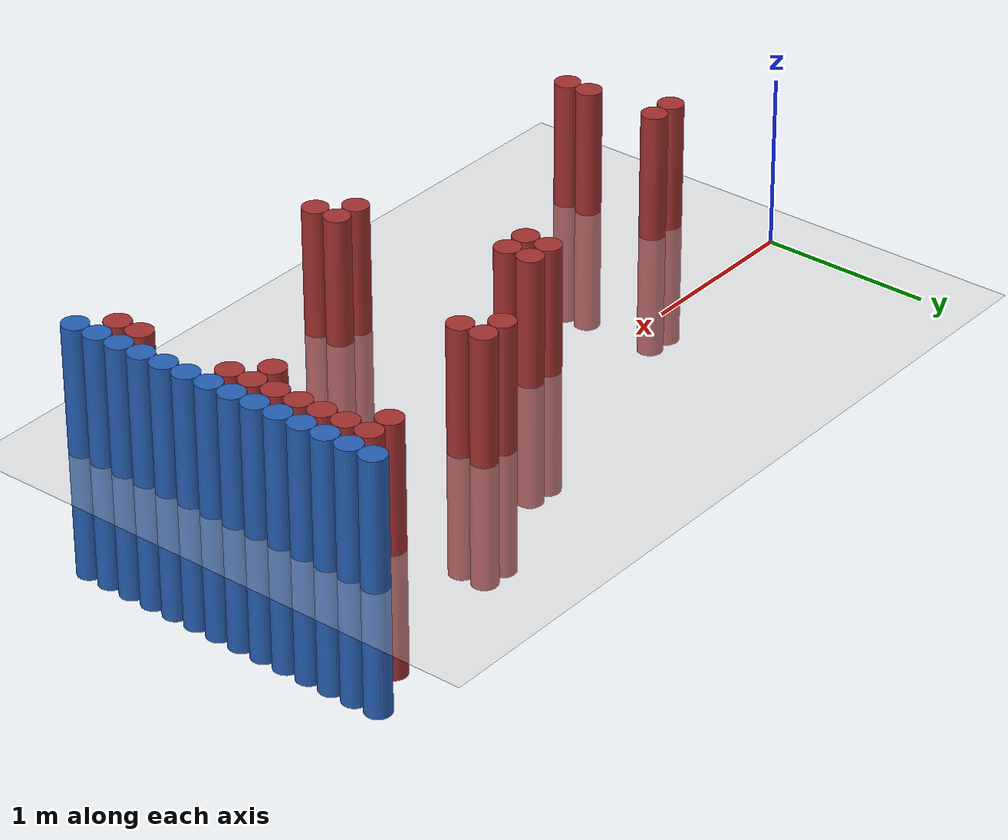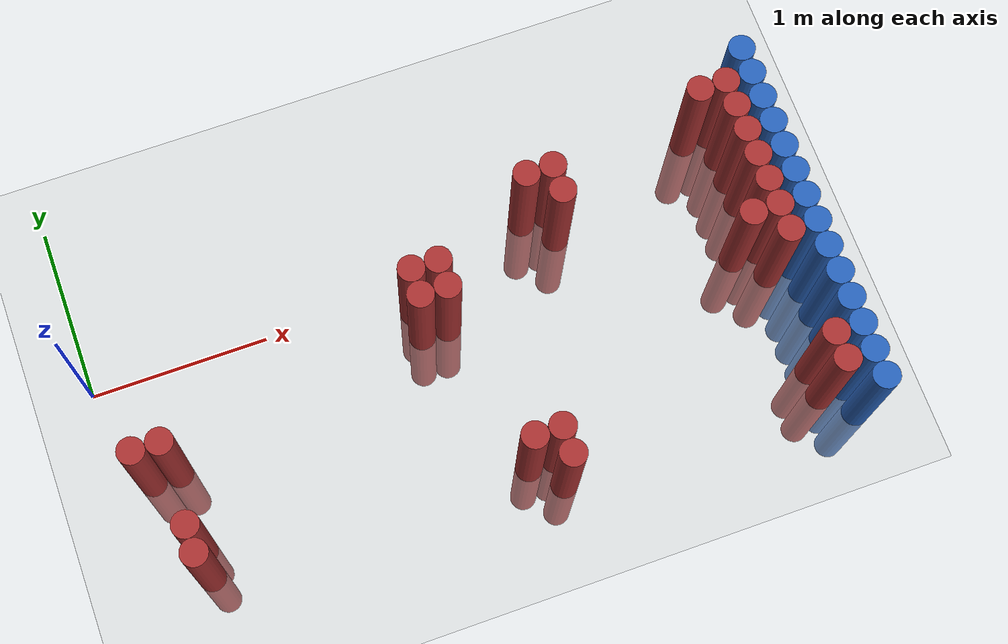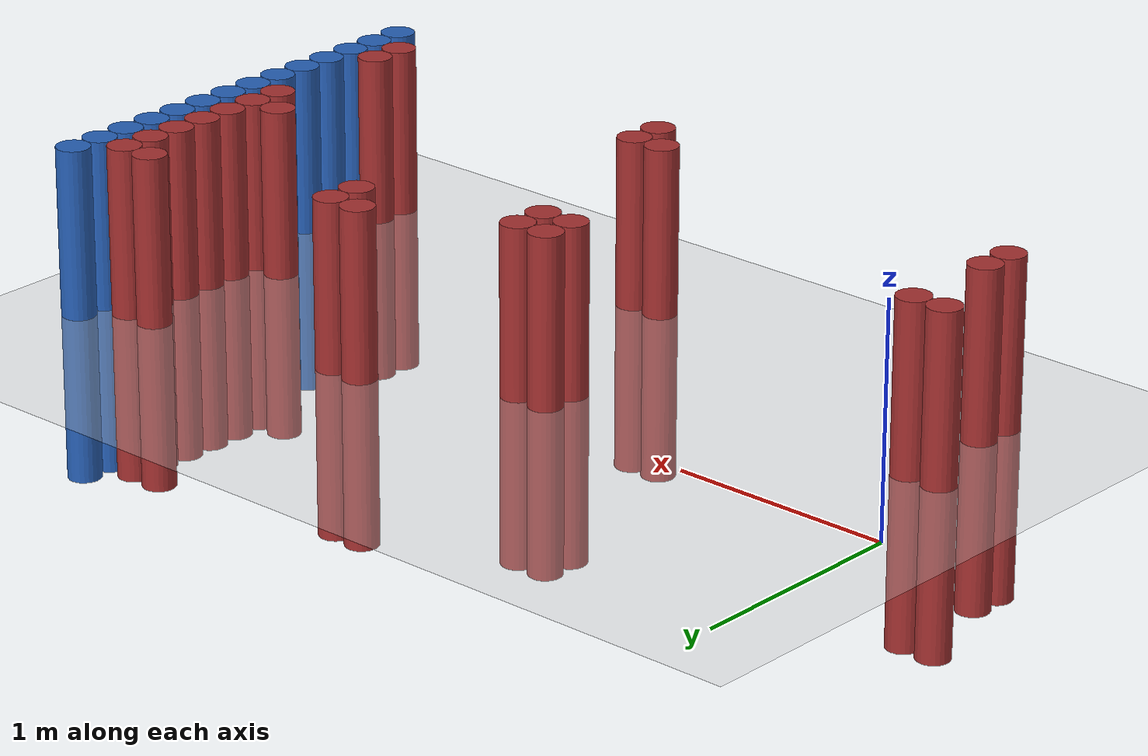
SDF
<sdf version="1.6">
 <world name="default">
  <model name="ground_plane">
   <static>1</static>
   <link name="link">
    <collision name="collision">
     <geometry><plane><normal>0 0 1</normal><size>100 100</size></plane></geometry>
     <surface><friction><ode><mu>100</mu><mu2>50</mu2></ode></friction></surface>
    </collision>
    <visual name="visual">
     <cast_shadows>0</cast_shadows>
     <geometry><plane><normal>0 0 1</normal><size>100 100</size></plane></geometry>
     <material>
      <script><uri>file://media/materials/scripts/gazebo.material</uri><name>Gazebo/Grey</name></script>
     </material>
    </visual>
   </link>
  </model>
  <model name="unit_cylinder_96">
   <static>1</static>
   <pose>3.925000 -1.325000 0.000000 0.000000 0.000000 0.000000</pose>
   <link name="link">
    <inertial>
     <mass>1</mass>
     <inertia><ixx>0.145833</ixx><ixy>0</ixy><ixz>0</ixz><iyy>0.145833</iyy><iyz>0</iyz><izz>0.125</izz></inertia>
    </inertial>
    <collision name="collision">
     <geometry><cylinder><radius>0.075000</radius><length>1.5</length></cylinder></geometry>
    </collision>
    <visual name="visual">
     <geometry><cylinder><radius>0.075000</radius><length>1.5</length></cylinder></geometry>
     <material>
      <ambient>0.152000 0.379000 0.720000 1</ambient>
      <diffuse>0.152000 0.379000 0.720000 1</diffuse>
     </material>
     <material>
      <script><name>Gazebo/Grey</name><uri>file://media/materials/scripts/gazebo.material</uri></script>
     </material>
    </visual>
   </link>
  </model>
  <model name="unit_cylinder_98">
   <static>1</static>
   <pose>3.925000 -1.175000 0.000000 0.000000 0.000000 0.000000</pose>
   <link name="link">
    <inertial>
     <mass>1</mass>
     <inertia><ixx>0.145833</ixx><ixy>0</ixy><ixz>0</ixz><iyy>0.145833</iyy><iyz>0</iyz><izz>0.125</izz></inertia>
    </inertial>
    <collision name="collision">
     <geometry><cylinder><radius>0.075000</radius><length>1.5</length></cylinder></geometry>
    </collision>
    <visual name="visual">
     <geometry><cylinder><radius>0.075000</radius><length>1.5</length></cylinder></geometry>
     <material>
      <ambient>0.152000 0.379000 0.720000 1</ambient>
      <diffuse>0.152000 0.379000 0.720000 1</diffuse>
     </material>
     <material>
      <script><name>Gazebo/Grey</name><uri>file://media/materials/scripts/gazebo.material</uri></script>
     </material>
    </visual>
   </link>
  </model>
  <model name="unit_cylinder_100">
   <static>1</static>
   <pose>3.925000 -1.025000 0.000000 0.000000 0.000000 0.000000</pose>
   <link name="link">
    <inertial>
     <mass>1</mass>
     <inertia><ixx>0.145833</ixx><ixy>0</ixy><ixz>0</ixz><iyy>0.145833</iyy><iyz>0</iyz><izz>0.125</izz></inertia>
    </inertial>
    <collision name="collision">
     <geometry><cylinder><radius>0.075000</radius><length>1.5</length></cylinder></geometry>
    </collision>
    <visual name="visual">
     <geometry><cylinder><radius>0.075000</radius><length>1.5</length></cylinder></geometry>
     <material>
      <ambient>0.152000 0.379000 0.720000 1</ambient>
      <diffuse>0.152000 0.379000 0.720000 1</diffuse>
     </material>
     <material>
      <script><name>Gazebo/Grey</name><uri>file://media/materials/scripts/gazebo.material</uri></script>
     </material>
    </visual>
   </link>
  </model>
  <model name="unit_cylinder_102">
   <static>1</static>
   <pose>3.925000 -0.875000 0.000000 0.000000 0.000000 0.000000</pose>
   <link name="link">
    <inertial>
     <mass>1</mass>
     <inertia><ixx>0.145833</ixx><ixy>0</ixy><ixz>0</ixz><iyy>0.145833</iyy><iyz>0</iyz><izz>0.125</izz></inertia>
    </inertial>
    <collision name="collision">
     <geometry><cylinder><radius>0.075000</radius><length>1.5</length></cylinder></geometry>
    </collision>
    <visual name="visual">
     <geometry><cylinder><radius>0.075000</radius><length>1.5</length></cylinder></geometry>
     <material>
      <ambient>0.152000 0.379000 0.720000 1</ambient>
      <diffuse>0.152000 0.379000 0.720000 1</diffuse>
     </material>
     <material>
      <script><name>Gazebo/Grey</name><uri>file://media/materials/scripts/gazebo.material</uri></script>
     </material>
    </visual>
   </link>
  </model>
  <model name="unit_cylinder_104">
   <static>1</static>
   <pose>3.925000 -0.725000 0.000000 0.000000 0.000000 0.000000</pose>
   <link name="link">
    <inertial>
     <mass>1</mass>
     <inertia><ixx>0.145833</ixx><ixy>0</ixy><ixz>0</ixz><iyy>0.145833</iyy><iyz>0</iyz><izz>0.125</izz></inertia>
    </inertial>
    <collision name="collision">
     <geometry><cylinder><radius>0.075000</radius><length>1.5</length></cylinder></geometry>
    </collision>
    <visual name="visual">
     <geometry><cylinder><radius>0.075000</radius><length>1.5</length></cylinder></geometry>
     <material>
      <ambient>0.152000 0.379000 0.720000 1</ambient>
      <diffuse>0.152000 0.379000 0.720000 1</diffuse>
     </material>
     <material>
      <script><name>Gazebo/Grey</name><uri>file://media/materials/scripts/gazebo.material</uri></script>
     </material>
    </visual>
   </link>
  </model>
  <model name="unit_cylinder_106">
   <static>1</static>
   <pose>3.925000 -0.575000 0.000000 0.000000 0.000000 0.000000</pose>
   <link name="link">
    <inertial>
     <mass>1</mass>
     <inertia><ixx>0.145833</ixx><ixy>0</ixy><ixz>0</ixz><iyy>0.145833</iyy><iyz>0</iyz><izz>0.125</izz></inertia>
    </inertial>
    <collision name="collision">
     <geometry><cylinder><radius>0.075000</radius><length>1.5</length></cylinder></geometry>
    </collision>
    <visual name="visual">
     <geometry><cylinder><radius>0.075000</radius><length>1.5</length></cylinder></geometry>
     <material>
      <ambient>0.152000 0.379000 0.720000 1</ambient>
      <diffuse>0.152000 0.379000 0.720000 1</diffuse>
     </material>
     <material>
      <script><name>Gazebo/Grey</name><uri>file://media/materials/scripts/gazebo.material</uri></script>
     </material>
    </visual>
   </link>
  </model>
  <model name="unit_cylinder_108">
   <static>1</static>
   <pose>3.925000 -0.425000 0.000000 0.000000 0.000000 0.000000</pose>
   <link name="link">
    <inertial>
     <mass>1</mass>
     <inertia><ixx>0.145833</ixx><ixy>0</ixy><ixz>0</ixz><iyy>0.145833</iyy><iyz>0</iyz><izz>0.125</izz></inertia>
    </inertial>
    <collision name="collision">
     <geometry><cylinder><radius>0.075000</radius><length>1.5</length></cylinder></geometry>
    </collision>
    <visual name="visual">
     <geometry><cylinder><radius>0.075000</radius><length>1.5</length></cylinder></geometry>
     <material>
      <ambient>0.152000 0.379000 0.720000 1</ambient>
      <diffuse>0.152000 0.379000 0.720000 1</diffuse>
     </material>
     <material>
      <script><name>Gazebo/Grey</name><uri>file://media/materials/scripts/gazebo.material</uri></script>
     </material>
    </visual>
   </link>
  </model>
  <model name="unit_cylinder_110">
   <static>1</static>
   <pose>3.925000 -0.275000 0.000000 0.000000 0.000000 0.000000</pose>
   <link name="link">
    <inertial>
     <mass>1</mass>
     <inertia><ixx>0.145833</ixx><ixy>0</ixy><ixz>0</ixz><iyy>0.145833</iyy><iyz>0</iyz><izz>0.125</izz></inertia>
    </inertial>
    <collision name="collision">
     <geometry><cylinder><radius>0.075000</radius><length>1.5</length></cylinder></geometry>
    </collision>
    <visual name="visual">
     <geometry><cylinder><radius>0.075000</radius><length>1.5</length></cylinder></geometry>
     <material>
      <ambient>0.152000 0.379000 0.720000 1</ambient>
      <diffuse>0.152000 0.379000 0.720000 1</diffuse>
     </material>
     <material>
      <script><name>Gazebo/Grey</name><uri>file://media/materials/scripts/gazebo.material</uri></script>
     </material>
    </visual>
   </link>
  </model>
  <model name="unit_cylinder_112">
   <static>1</static>
   <pose>3.925000 -0.125000 0.000000 0.000000 0.000000 0.000000</pose>
   <link name="link">
    <inertial>
     <mass>1</mass>
     <inertia><ixx>0.145833</ixx><ixy>0</ixy><ixz>0</ixz><iyy>0.145833</iyy><iyz>0</iyz><izz>0.125</izz></inertia>
    </inertial>
    <collision name="collision">
     <geometry><cylinder><radius>0.075000</radius><length>1.5</length></cylinder></geometry>
    </collision>
    <visual name="visual">
     <geometry><cylinder><radius>0.075000</radius><length>1.5</length></cylinder></geometry>
     <material>
      <ambient>0.152000 0.379000 0.720000 1</ambient>
      <diffuse>0.152000 0.379000 0.720000 1</diffuse>
     </material>
     <material>
      <script><name>Gazebo/Grey</name><uri>file://media/materials/scripts/gazebo.material</uri></script>
     </material>
    </visual>
   </link>
  </model>
  <model name="unit_cylinder_114">
   <static>1</static>
   <pose>3.925000 0.025000 0.000000 0.000000 0.000000 0.000000</pose>
   <link name="link">
    <inertial>
     <mass>1</mass>
     <inertia><ixx>0.145833</ixx><ixy>0</ixy><ixz>0</ixz><iyy>0.145833</iyy><iyz>0</iyz><izz>0.125</izz></inertia>
    </inertial>
    <collision name="collision">
     <geometry><cylinder><radius>0.075000</radius><length>1.5</length></cylinder></geometry>
    </collision>
    <visual name="visual">
     <geometry><cylinder><radius>0.075000</radius><length>1.5</length></cylinder></geometry>
     <material>
      <ambient>0.152000 0.379000 0.720000 1</ambient>
      <diffuse>0.152000 0.379000 0.720000 1</diffuse>
     </material>
     <material>
      <script><name>Gazebo/Grey</name><uri>file://media/materials/scripts/gazebo.material</uri></script>
     </material>
    </visual>
   </link>
  </model>
  <model name="unit_cylinder_116">
   <static>1</static>
   <pose>3.925000 0.175000 0.000000 0.000000 0.000000 0.000000</pose>
   <link name="link">
    <inertial>
     <mass>1</mass>
     <inertia><ixx>0.145833</ixx><ixy>0</ixy><ixz>0</ixz><iyy>0.145833</iyy><iyz>0</iyz><izz>0.125</izz></inertia>
    </inertial>
    <collision name="collision">
     <geometry><cylinder><radius>0.075000</radius><length>1.5</length></cylinder></geometry>
    </collision>
    <visual name="visual">
     <geometry><cylinder><radius>0.075000</radius><length>1.5</length></cylinder></geometry>
     <material>
      <ambient>0.152000 0.379000 0.720000 1</ambient>
      <diffuse>0.152000 0.379000 0.720000 1</diffuse>
     </material>
     <material>
      <script><name>Gazebo/Grey</name><uri>file://media/materials/scripts/gazebo.material</uri></script>
     </material>
    </visual>
   </link>
  </model>
  <model name="unit_cylinder_118">
   <static>1</static>
   <pose>3.925000 0.325000 0.000000 0.000000 0.000000 0.000000</pose>
   <link name="link">
    <inertial>
     <mass>1</mass>
     <inertia><ixx>0.145833</ixx><ixy>0</ixy><ixz>0</ixz><iyy>0.145833</iyy><iyz>0</iyz><izz>0.125</izz></inertia>
    </inertial>
    <collision name="collision">
     <geometry><cylinder><radius>0.075000</radius><length>1.5</length></cylinder></geometry>
    </collision>
    <visual name="visual">
     <geometry><cylinder><radius>0.075000</radius><length>1.5</length></cylinder></geometry>
     <material>
      <ambient>0.152000 0.379000 0.720000 1</ambient>
      <diffuse>0.152000 0.379000 0.720000 1</diffuse>
     </material>
     <material>
      <script><name>Gazebo/Grey</name><uri>file://media/materials/scripts/gazebo.material</uri></script>
     </material>
    </visual>
   </link>
  </model>
  <model name="unit_cylinder_120">
   <static>1</static>
   <pose>3.925000 0.475000 0.000000 0.000000 0.000000 0.000000</pose>
   <link name="link">
    <inertial>
     <mass>1</mass>
     <inertia><ixx>0.145833</ixx><ixy>0</ixy><ixz>0</ixz><iyy>0.145833</iyy><iyz>0</iyz><izz>0.125</izz></inertia>
    </inertial>
    <collision name="collision">
     <geometry><cylinder><radius>0.075000</radius><length>1.5</length></cylinder></geometry>
    </collision>
    <visual name="visual">
     <geometry><cylinder><radius>0.075000</radius><length>1.5</length></cylinder></geometry>
     <material>
      <ambient>0.152000 0.379000 0.720000 1</ambient>
      <diffuse>0.152000 0.379000 0.720000 1</diffuse>
     </material>
     <material>
      <script><name>Gazebo/Grey</name><uri>file://media/materials/scripts/gazebo.material</uri></script>
     </material>
    </visual>
   </link>
  </model>
  <model name="unit_cylinder_323">
   <static>1</static>
   <pose>0.175000 -0.575000 0.000000 0.000000 0.000000 0.000000</pose>
   <link name="link">
    <inertial>
     <mass>1</mass>
     <inertia><ixx>0.145833</ixx><ixy>0</ixy><ixz>0</ixz><iyy>0.145833</iyy><iyz>0</iyz><izz>0.125</izz></inertia>
    </inertial>
    <collision name="collision">
     <geometry><cylinder><radius>0.075000</radius><length>1.5</length></cylinder></geometry>
    </collision>
    <visual name="visual">
     <geometry><cylinder><radius>0.075000</radius><length>1.5</length></cylinder></geometry>
     <material>
      <ambient>0.648000 0.192000 0.192000 1</ambient>
      <diffuse>0.648000 0.192000 0.192000 1</diffuse>
     </material>
     <material>
      <script><name>Gazebo/Grey</name><uri>file://media/materials/scripts/gazebo.material</uri></script>
     </material>
    </visual>
   </link>
  </model>
  <model name="unit_cylinder_324">
   <static>1</static>
   <pose>0.325000 -1.175000 0.000000 0.000000 0.000000 0.000000</pose>
   <link name="link">
    <inertial>
     <mass>1</mass>
     <inertia><ixx>0.145833</ixx><ixy>0</ixy><ixz>0</ixz><iyy>0.145833</iyy><iyz>0</iyz><izz>0.125</izz></inertia>
    </inertial>
    <collision name="collision">
     <geometry><cylinder><radius>0.075000</radius><length>1.5</length></cylinder></geometry>
    </collision>
    <visual name="visual">
     <geometry><cylinder><radius>0.075000</radius><length>1.5</length></cylinder></geometry>
     <material>
      <ambient>0.648000 0.192000 0.192000 1</ambient>
      <diffuse>0.648000 0.192000 0.192000 1</diffuse>
     </material>
     <material>
      <script><name>Gazebo/Grey</name><uri>file://media/materials/scripts/gazebo.material</uri></script>
     </material>
    </visual>
   </link>
  </model>
  <model name="unit_cylinder_325">
   <static>1</static>
   <pose>0.325000 -1.025000 0.000000 0.000000 0.000000 0.000000</pose>
   <link name="link">
    <inertial>
     <mass>1</mass>
     <inertia><ixx>0.145833</ixx><ixy>0</ixy><ixz>0</ixz><iyy>0.145833</iyy><iyz>0</iyz><izz>0.125</izz></inertia>
    </inertial>
    <collision name="collision">
     <geometry><cylinder><radius>0.075000</radius><length>1.5</length></cylinder></geometry>
    </collision>
    <visual name="visual">
     <geometry><cylinder><radius>0.075000</radius><length>1.5</length></cylinder></geometry>
     <material>
      <ambient>0.648000 0.192000 0.192000 1</ambient>
      <diffuse>0.648000 0.192000 0.192000 1</diffuse>
     </material>
     <material>
      <script><name>Gazebo/Grey</name><uri>file://media/materials/scripts/gazebo.material</uri></script>
     </material>
    </visual>
   </link>
  </model>
  <model name="unit_cylinder_326">
   <static>1</static>
   <pose>0.325000 -0.575000 0.000000 0.000000 0.000000 0.000000</pose>
   <link name="link">
    <inertial>
     <mass>1</mass>
     <inertia><ixx>0.145833</ixx><ixy>0</ixy><ixz>0</ixz><iyy>0.145833</iyy><iyz>0</iyz><izz>0.125</izz></inertia>
    </inertial>
    <collision name="collision">
     <geometry><cylinder><radius>0.075000</radius><length>1.5</length></cylinder></geometry>
    </collision>
    <visual name="visual">
     <geometry><cylinder><radius>0.075000</radius><length>1.5</length></cylinder></geometry>
     <material>
      <ambient>0.648000 0.192000 0.192000 1</ambient>
      <diffuse>0.648000 0.192000 0.192000 1</diffuse>
     </material>
     <material>
      <script><name>Gazebo/Grey</name><uri>file://media/materials/scripts/gazebo.material</uri></script>
     </material>
    </visual>
   </link>
  </model>
  <model name="unit_cylinder_356">
   <static>1</static>
   <pose>1.825000 -0.275000 0.000000 0.000000 0.000000 0.000000</pose>
   <link name="link">
    <inertial>
     <mass>1</mass>
     <inertia><ixx>0.145833</ixx><ixy>0</ixy><ixz>0</ixz><iyy>0.145833</iyy><iyz>0</iyz><izz>0.125</izz></inertia>
    </inertial>
    <collision name="collision">
     <geometry><cylinder><radius>0.075000</radius><length>1.5</length></cylinder></geometry>
    </collision>
    <visual name="visual">
     <geometry><cylinder><radius>0.075000</radius><length>1.5</length></cylinder></geometry>
     <material>
      <ambient>0.648000 0.192000 0.192000 1</ambient>
      <diffuse>0.648000 0.192000 0.192000 1</diffuse>
     </material>
     <material>
      <script><name>Gazebo/Grey</name><uri>file://media/materials/scripts/gazebo.material</uri></script>
     </material>
    </visual>
   </link>
  </model>
  <model name="unit_cylinder_357">
   <static>1</static>
   <pose>1.825000 -0.125000 0.000000 0.000000 0.000000 0.000000</pose>
   <link name="link">
    <inertial>
     <mass>1</mass>
     <inertia><ixx>0.145833</ixx><ixy>0</ixy><ixz>0</ixz><iyy>0.145833</iyy><iyz>0</iyz><izz>0.125</izz></inertia>
    </inertial>
    <collision name="collision">
     <geometry><cylinder><radius>0.075000</radius><length>1.5</length></cylinder></geometry>
    </collision>
    <visual name="visual">
     <geometry><cylinder><radius>0.075000</radius><length>1.5</length></cylinder></geometry>
     <material>
      <ambient>0.648000 0.192000 0.192000 1</ambient>
      <diffuse>0.648000 0.192000 0.192000 1</diffuse>
     </material>
     <material>
      <script><name>Gazebo/Grey</name><uri>file://media/materials/scripts/gazebo.material</uri></script>
     </material>
    </visual>
   </link>
  </model>
  <model name="unit_cylinder_359">
   <static>1</static>
   <pose>1.975000 -0.275000 0.000000 0.000000 0.000000 0.000000</pose>
   <link name="link">
    <inertial>
     <mass>1</mass>
     <inertia><ixx>0.145833</ixx><ixy>0</ixy><ixz>0</ixz><iyy>0.145833</iyy><iyz>0</iyz><izz>0.125</izz></inertia>
    </inertial>
    <collision name="collision">
     <geometry><cylinder><radius>0.075000</radius><length>1.5</length></cylinder></geometry>
    </collision>
    <visual name="visual">
     <geometry><cylinder><radius>0.075000</radius><length>1.5</length></cylinder></geometry>
     <material>
      <ambient>0.648000 0.192000 0.192000 1</ambient>
      <diffuse>0.648000 0.192000 0.192000 1</diffuse>
     </material>
     <material>
      <script><name>Gazebo/Grey</name><uri>file://media/materials/scripts/gazebo.material</uri></script>
     </material>
    </visual>
   </link>
  </model>
  <model name="unit_cylinder_360">
   <static>1</static>
   <pose>1.975000 -0.125000 0.000000 0.000000 0.000000 0.000000</pose>
   <link name="link">
    <inertial>
     <mass>1</mass>
     <inertia><ixx>0.145833</ixx><ixy>0</ixy><ixz>0</ixz><iyy>0.145833</iyy><iyz>0</iyz><izz>0.125</izz></inertia>
    </inertial>
    <collision name="collision">
     <geometry><cylinder><radius>0.075000</radius><length>1.5</length></cylinder></geometry>
    </collision>
    <visual name="visual">
     <geometry><cylinder><radius>0.075000</radius><length>1.5</length></cylinder></geometry>
     <material>
      <ambient>0.648000 0.192000 0.192000 1</ambient>
      <diffuse>0.648000 0.192000 0.192000 1</diffuse>
     </material>
     <material>
      <script><name>Gazebo/Grey</name><uri>file://media/materials/scripts/gazebo.material</uri></script>
     </material>
    </visual>
   </link>
  </model>
  <model name="unit_cylinder_361">
   <static>1</static>
   <pose>2.125000 -1.175000 0.000000 0.000000 0.000000 0.000000</pose>
   <link name="link">
    <inertial>
     <mass>1</mass>
     <inertia><ixx>0.145833</ixx><ixy>0</ixy><ixz>0</ixz><iyy>0.145833</iyy><iyz>0</iyz><izz>0.125</izz></inertia>
    </inertial>
    <collision name="collision">
     <geometry><cylinder><radius>0.075000</radius><length>1.5</length></cylinder></geometry>
    </collision>
    <visual name="visual">
     <geometry><cylinder><radius>0.075000</radius><length>1.5</length></cylinder></geometry>
     <material>
      <ambient>0.648000 0.192000 0.192000 1</ambient>
      <diffuse>0.648000 0.192000 0.192000 1</diffuse>
     </material>
     <material>
      <script><name>Gazebo/Grey</name><uri>file://media/materials/scripts/gazebo.material</uri></script>
     </material>
    </visual>
   </link>
  </model>
  <model name="unit_cylinder_363">
   <static>1</static>
   <pose>2.275000 -1.325000 0.000000 0.000000 0.000000 0.000000</pose>
   <link name="link">
    <inertial>
     <mass>1</mass>
     <inertia><ixx>0.145833</ixx><ixy>0</ixy><ixz>0</ixz><iyy>0.145833</iyy><iyz>0</iyz><izz>0.125</izz></inertia>
    </inertial>
    <collision name="collision">
     <geometry><cylinder><radius>0.075000</radius><length>1.5</length></cylinder></geometry>
    </collision>
    <visual name="visual">
     <geometry><cylinder><radius>0.075000</radius><length>1.5</length></cylinder></geometry>
     <material>
      <ambient>0.648000 0.192000 0.192000 1</ambient>
      <diffuse>0.648000 0.192000 0.192000 1</diffuse>
     </material>
     <material>
      <script><name>Gazebo/Grey</name><uri>file://media/materials/scripts/gazebo.material</uri></script>
     </material>
    </visual>
   </link>
  </model>
  <model name="unit_cylinder_364">
   <static>1</static>
   <pose>2.275000 -1.175000 0.000000 0.000000 0.000000 0.000000</pose>
   <link name="link">
    <inertial>
     <mass>1</mass>
     <inertia><ixx>0.145833</ixx><ixy>0</ixy><ixz>0</ixz><iyy>0.145833</iyy><iyz>0</iyz><izz>0.125</izz></inertia>
    </inertial>
    <collision name="collision">
     <geometry><cylinder><radius>0.075000</radius><length>1.5</length></cylinder></geometry>
    </collision>
    <visual name="visual">
     <geometry><cylinder><radius>0.075000</radius><length>1.5</length></cylinder></geometry>
     <material>
      <ambient>0.648000 0.192000 0.192000 1</ambient>
      <diffuse>0.648000 0.192000 0.192000 1</diffuse>
     </material>
     <material>
      <script><name>Gazebo/Grey</name><uri>file://media/materials/scripts/gazebo.material</uri></script>
     </material>
    </visual>
   </link>
  </model>
  <model name="unit_cylinder_371">
   <static>1</static>
   <pose>2.575000 0.175000 0.000000 0.000000 0.000000 0.000000</pose>
   <link name="link">
    <inertial>
     <mass>1</mass>
     <inertia><ixx>0.145833</ixx><ixy>0</ixy><ixz>0</ixz><iyy>0.145833</iyy><iyz>0</iyz><izz>0.125</izz></inertia>
    </inertial>
    <collision name="collision">
     <geometry><cylinder><radius>0.075000</radius><length>1.5</length></cylinder></geometry>
    </collision>
    <visual name="visual">
     <geometry><cylinder><radius>0.075000</radius><length>1.5</length></cylinder></geometry>
     <material>
      <ambient>0.648000 0.192000 0.192000 1</ambient>
      <diffuse>0.648000 0.192000 0.192000 1</diffuse>
     </material>
     <material>
      <script><name>Gazebo/Grey</name><uri>file://media/materials/scripts/gazebo.material</uri></script>
     </material>
    </visual>
   </link>
  </model>
  <model name="unit_cylinder_373">
   <static>1</static>
   <pose>2.725000 0.025000 0.000000 0.000000 0.000000 0.000000</pose>
   <link name="link">
    <inertial>
     <mass>1</mass>
     <inertia><ixx>0.145833</ixx><ixy>0</ixy><ixz>0</ixz><iyy>0.145833</iyy><iyz>0</iyz><izz>0.125</izz></inertia>
    </inertial>
    <collision name="collision">
     <geometry><cylinder><radius>0.075000</radius><length>1.5</length></cylinder></geometry>
    </collision>
    <visual name="visual">
     <geometry><cylinder><radius>0.075000</radius><length>1.5</length></cylinder></geometry>
     <material>
      <ambient>0.648000 0.192000 0.192000 1</ambient>
      <diffuse>0.648000 0.192000 0.192000 1</diffuse>
     </material>
     <material>
      <script><name>Gazebo/Grey</name><uri>file://media/materials/scripts/gazebo.material</uri></script>
     </material>
    </visual>
   </link>
  </model>
  <model name="unit_cylinder_374">
   <static>1</static>
   <pose>2.725000 0.175000 0.000000 0.000000 0.000000 0.000000</pose>
   <link name="link">
    <inertial>
     <mass>1</mass>
     <inertia><ixx>0.145833</ixx><ixy>0</ixy><ixz>0</ixz><iyy>0.145833</iyy><iyz>0</iyz><izz>0.125</izz></inertia>
    </inertial>
    <collision name="collision">
     <geometry><cylinder><radius>0.075000</radius><length>1.5</length></cylinder></geometry>
    </collision>
    <visual name="visual">
     <geometry><cylinder><radius>0.075000</radius><length>1.5</length></cylinder></geometry>
     <material>
      <ambient>0.648000 0.192000 0.192000 1</ambient>
      <diffuse>0.648000 0.192000 0.192000 1</diffuse>
     </material>
     <material>
      <script><name>Gazebo/Grey</name><uri>file://media/materials/scripts/gazebo.material</uri></script>
     </material>
    </visual>
   </link>
  </model>
  <model name="unit_cylinder_386">
   <static>1</static>
   <pose>3.625000 -0.425000 0.000000 0.000000 0.000000 0.000000</pose>
   <link name="link">
    <inertial>
     <mass>1</mass>
     <inertia><ixx>0.145833</ixx><ixy>0</ixy><ixz>0</ixz><iyy>0.145833</iyy><iyz>0</iyz><izz>0.125</izz></inertia>
    </inertial>
    <collision name="collision">
     <geometry><cylinder><radius>0.075000</radius><length>1.5</length></cylinder></geometry>
    </collision>
    <visual name="visual">
     <geometry><cylinder><radius>0.075000</radius><length>1.5</length></cylinder></geometry>
     <material>
      <ambient>0.648000 0.192000 0.192000 1</ambient>
      <diffuse>0.648000 0.192000 0.192000 1</diffuse>
     </material>
     <material>
      <script><name>Gazebo/Grey</name><uri>file://media/materials/scripts/gazebo.material</uri></script>
     </material>
    </visual>
   </link>
  </model>
  <model name="unit_cylinder_387">
   <static>1</static>
   <pose>3.625000 0.325000 0.000000 0.000000 0.000000 0.000000</pose>
   <link name="link">
    <inertial>
     <mass>1</mass>
     <inertia><ixx>0.145833</ixx><ixy>0</ixy><ixz>0</ixz><iyy>0.145833</iyy><iyz>0</iyz><izz>0.125</izz></inertia>
    </inertial>
    <collision name="collision">
     <geometry><cylinder><radius>0.075000</radius><length>1.5</length></cylinder></geometry>
    </collision>
    <visual name="visual">
     <geometry><cylinder><radius>0.075000</radius><length>1.5</length></cylinder></geometry>
     <material>
      <ambient>0.648000 0.192000 0.192000 1</ambient>
      <diffuse>0.648000 0.192000 0.192000 1</diffuse>
     </material>
     <material>
      <script><name>Gazebo/Grey</name><uri>file://media/materials/scripts/gazebo.material</uri></script>
     </material>
    </visual>
   </link>
  </model>
  <model name="unit_cylinder_389">
   <static>1</static>
   <pose>3.775000 -1.325000 0.000000 0.000000 0.000000 0.000000</pose>
   <link name="link">
    <inertial>
     <mass>1</mass>
     <inertia><ixx>0.145833</ixx><ixy>0</ixy><ixz>0</ixz><iyy>0.145833</iyy><iyz>0</iyz><izz>0.125</izz></inertia>
    </inertial>
    <collision name="collision">
     <geometry><cylinder><radius>0.075000</radius><length>1.5</length></cylinder></geometry>
    </collision>
    <visual name="visual">
     <geometry><cylinder><radius>0.075000</radius><length>1.5</length></cylinder></geometry>
     <material>
      <ambient>0.648000 0.192000 0.192000 1</ambient>
      <diffuse>0.648000 0.192000 0.192000 1</diffuse>
     </material>
     <material>
      <script><name>Gazebo/Grey</name><uri>file://media/materials/scripts/gazebo.material</uri></script>
     </material>
    </visual>
   </link>
  </model>
  <model name="unit_cylinder_390">
   <static>1</static>
   <pose>3.775000 -1.175000 0.000000 0.000000 0.000000 0.000000</pose>
   <link name="link">
    <inertial>
     <mass>1</mass>
     <inertia><ixx>0.145833</ixx><ixy>0</ixy><ixz>0</ixz><iyy>0.145833</iyy><iyz>0</iyz><izz>0.125</izz></inertia>
    </inertial>
    <collision name="collision">
     <geometry><cylinder><radius>0.075000</radius><length>1.5</length></cylinder></geometry>
    </collision>
    <visual name="visual">
     <geometry><cylinder><radius>0.075000</radius><length>1.5</length></cylinder></geometry>
     <material>
      <ambient>0.648000 0.192000 0.192000 1</ambient>
      <diffuse>0.648000 0.192000 0.192000 1</diffuse>
     </material>
     <material>
      <script><name>Gazebo/Grey</name><uri>file://media/materials/scripts/gazebo.material</uri></script>
     </material>
    </visual>
   </link>
  </model>
  <model name="unit_cylinder_391">
   <static>1</static>
   <pose>3.775000 -0.575000 0.000000 0.000000 0.000000 0.000000</pose>
   <link name="link">
    <inertial>
     <mass>1</mass>
     <inertia><ixx>0.145833</ixx><ixy>0</ixy><ixz>0</ixz><iyy>0.145833</iyy><iyz>0</iyz><izz>0.125</izz></inertia>
    </inertial>
    <collision name="collision">
     <geometry><cylinder><radius>0.075000</radius><length>1.5</length></cylinder></geometry>
    </collision>
    <visual name="visual">
     <geometry><cylinder><radius>0.075000</radius><length>1.5</length></cylinder></geometry>
     <material>
      <ambient>0.648000 0.192000 0.192000 1</ambient>
      <diffuse>0.648000 0.192000 0.192000 1</diffuse>
     </material>
     <material>
      <script><name>Gazebo/Grey</name><uri>file://media/materials/scripts/gazebo.material</uri></script>
     </material>
    </visual>
   </link>
  </model>
  <model name="unit_cylinder_392">
   <static>1</static>
   <pose>3.775000 -0.425000 0.000000 0.000000 0.000000 0.000000</pose>
   <link name="link">
    <inertial>
     <mass>1</mass>
     <inertia><ixx>0.145833</ixx><ixy>0</ixy><ixz>0</ixz><iyy>0.145833</iyy><iyz>0</iyz><izz>0.125</izz></inertia>
    </inertial>
    <collision name="collision">
     <geometry><cylinder><radius>0.075000</radius><length>1.5</length></cylinder></geometry>
    </collision>
    <visual name="visual">
     <geometry><cylinder><radius>0.075000</radius><length>1.5</length></cylinder></geometry>
     <material>
      <ambient>0.648000 0.192000 0.192000 1</ambient>
      <diffuse>0.648000 0.192000 0.192000 1</diffuse>
     </material>
     <material>
      <script><name>Gazebo/Grey</name><uri>file://media/materials/scripts/gazebo.material</uri></script>
     </material>
    </visual>
   </link>
  </model>
  <model name="unit_cylinder_393">
   <static>1</static>
   <pose>3.775000 -0.275000 0.000000 0.000000 0.000000 0.000000</pose>
   <link name="link">
    <inertial>
     <mass>1</mass>
     <inertia><ixx>0.145833</ixx><ixy>0</ixy><ixz>0</ixz><iyy>0.145833</iyy><iyz>0</iyz><izz>0.125</izz></inertia>
    </inertial>
    <collision name="collision">
     <geometry><cylinder><radius>0.075000</radius><length>1.5</length></cylinder></geometry>
    </collision>
    <visual name="visual">
     <geometry><cylinder><radius>0.075000</radius><length>1.5</length></cylinder></geometry>
     <material>
      <ambient>0.648000 0.192000 0.192000 1</ambient>
      <diffuse>0.648000 0.192000 0.192000 1</diffuse>
     </material>
     <material>
      <script><name>Gazebo/Grey</name><uri>file://media/materials/scripts/gazebo.material</uri></script>
     </material>
    </visual>
   </link>
  </model>
  <model name="unit_cylinder_394">
   <static>1</static>
   <pose>3.775000 -0.125000 0.000000 0.000000 0.000000 0.000000</pose>
   <link name="link">
    <inertial>
     <mass>1</mass>
     <inertia><ixx>0.145833</ixx><ixy>0</ixy><ixz>0</ixz><iyy>0.145833</iyy><iyz>0</iyz><izz>0.125</izz></inertia>
    </inertial>
    <collision name="collision">
     <geometry><cylinder><radius>0.075000</radius><length>1.5</length></cylinder></geometry>
    </collision>
    <visual name="visual">
     <geometry><cylinder><radius>0.075000</radius><length>1.5</length></cylinder></geometry>
     <material>
      <ambient>0.648000 0.192000 0.192000 1</ambient>
      <diffuse>0.648000 0.192000 0.192000 1</diffuse>
     </material>
     <material>
      <script><name>Gazebo/Grey</name><uri>file://media/materials/scripts/gazebo.material</uri></script>
     </material>
    </visual>
   </link>
  </model>
  <model name="unit_cylinder_395">
   <static>1</static>
   <pose>3.775000 0.025000 0.000000 0.000000 0.000000 0.000000</pose>
   <link name="link">
    <inertial>
     <mass>1</mass>
     <inertia><ixx>0.145833</ixx><ixy>0</ixy><ixz>0</ixz><iyy>0.145833</iyy><iyz>0</iyz><izz>0.125</izz></inertia>
    </inertial>
    <collision name="collision">
     <geometry><cylinder><radius>0.075000</radius><length>1.5</length></cylinder></geometry>
    </collision>
    <visual name="visual">
     <geometry><cylinder><radius>0.075000</radius><length>1.5</length></cylinder></geometry>
     <material>
      <ambient>0.648000 0.192000 0.192000 1</ambient>
      <diffuse>0.648000 0.192000 0.192000 1</diffuse>
     </material>
     <material>
      <script><name>Gazebo/Grey</name><uri>file://media/materials/scripts/gazebo.material</uri></script>
     </material>
    </visual>
   </link>
  </model>
  <model name="unit_cylinder_396">
   <static>1</static>
   <pose>3.775000 0.175000 0.000000 0.000000 0.000000 0.000000</pose>
   <link name="link">
    <inertial>
     <mass>1</mass>
     <inertia><ixx>0.145833</ixx><ixy>0</ixy><ixz>0</ixz><iyy>0.145833</iyy><iyz>0</iyz><izz>0.125</izz></inertia>
    </inertial>
    <collision name="collision">
     <geometry><cylinder><radius>0.075000</radius><length>1.5</length></cylinder></geometry>
    </collision>
    <visual name="visual">
     <geometry><cylinder><radius>0.075000</radius><length>1.5</length></cylinder></geometry>
     <material>
      <ambient>0.648000 0.192000 0.192000 1</ambient>
      <diffuse>0.648000 0.192000 0.192000 1</diffuse>
     </material>
     <material>
      <script><name>Gazebo/Grey</name><uri>file://media/materials/scripts/gazebo.material</uri></script>
     </material>
    </visual>
   </link>
  </model>
  <model name="unit_cylinder_397">
   <static>1</static>
   <pose>3.775000 0.325000 0.000000 0.000000 0.000000 0.000000</pose>
   <link name="link">
    <inertial>
     <mass>1</mass>
     <inertia><ixx>0.145833</ixx><ixy>0</ixy><ixz>0</ixz><iyy>0.145833</iyy><iyz>0</iyz><izz>0.125</izz></inertia>
    </inertial>
    <collision name="collision">
     <geometry><cylinder><radius>0.075000</radius><length>1.5</length></cylinder></geometry>
    </collision>
    <visual name="visual">
     <geometry><cylinder><radius>0.075000</radius><length>1.5</length></cylinder></geometry>
     <material>
      <ambient>0.648000 0.192000 0.192000 1</ambient>
      <diffuse>0.648000 0.192000 0.192000 1</diffuse>
     </material>
     <material>
      <script><name>Gazebo/Grey</name><uri>file://media/materials/scripts/gazebo.material</uri></script>
     </material>
    </visual>
   </link>
  </model>
  <model name="unit_cylinder_414">
   <static>1</static>
   <pose>3.925000 -1.475000 0.000000 0.000000 0.000000 0.000000</pose>
   <link name="link">
    <inertial>
     <mass>1</mass>
     <inertia><ixx>0.145833</ixx><ixy>0</ixy><ixz>0</ixz><iyy>0.145833</iyy><iyz>0</iyz><izz>0.125</izz></inertia>
    </inertial>
    <collision name="collision">
     <geometry><cylinder><radius>0.075000</radius><length>1.5</length></cylinder></geometry>
    </collision>
    <visual name="visual">
     <geometry><cylinder><radius>0.075000</radius><length>1.5</length></cylinder></geometry>
     <material>
      <ambient>0.152000 0.379000 0.720000 1</ambient>
      <diffuse>0.152000 0.379000 0.720000 1</diffuse>
     </material>
     <material>
      <script><name>Gazebo/Grey</name><uri>file://media/materials/scripts/gazebo.material</uri></script>
     </material>
    </visual>
   </link>
  </model>
  <model name="unit_cylinder_415">
   <static>1</static>
   <pose>3.925000 -1.325000 0.000000 0.000000 0.000000 0.000000</pose>
   <link name="link">
    <inertial>
     <mass>1</mass>
     <inertia><ixx>0.145833</ixx><ixy>0</ixy><ixz>0</ixz><iyy>0.145833</iyy><iyz>0</iyz><izz>0.125</izz></inertia>
    </inertial>
    <collision name="collision">
     <geometry><cylinder><radius>0.075000</radius><length>1.5</length></cylinder></geometry>
    </collision>
    <visual name="visual">
     <geometry><cylinder><radius>0.075000</radius><length>1.5</length></cylinder></geometry>
     <material>
      <ambient>0.152000 0.379000 0.720000 1</ambient>
      <diffuse>0.152000 0.379000 0.720000 1</diffuse>
     </material>
     <material>
      <script><name>Gazebo/Grey</name><uri>file://media/materials/scripts/gazebo.material</uri></script>
     </material>
    </visual>
   </link>
  </model>
  <model name="unit_cylinder_416">
   <static>1</static>
   <pose>3.925000 -1.175000 0.000000 0.000000 0.000000 0.000000</pose>
   <link name="link">
    <inertial>
     <mass>1</mass>
     <inertia><ixx>0.145833</ixx><ixy>0</ixy><ixz>0</ixz><iyy>0.145833</iyy><iyz>0</iyz><izz>0.125</izz></inertia>
    </inertial>
    <collision name="collision">
     <geometry><cylinder><radius>0.075000</radius><length>1.5</length></cylinder></geometry>
    </collision>
    <visual name="visual">
     <geometry><cylinder><radius>0.075000</radius><length>1.5</length></cylinder></geometry>
     <material>
      <ambient>0.152000 0.379000 0.720000 1</ambient>
      <diffuse>0.152000 0.379000 0.720000 1</diffuse>
     </material>
     <material>
      <script><name>Gazebo/Grey</name><uri>file://media/materials/scripts/gazebo.material</uri></script>
     </material>
    </visual>
   </link>
  </model>
  <model name="unit_cylinder_417">
   <static>1</static>
   <pose>3.925000 -1.025000 0.000000 0.000000 0.000000 0.000000</pose>
   <link name="link">
    <inertial>
     <mass>1</mass>
     <inertia><ixx>0.145833</ixx><ixy>0</ixy><ixz>0</ixz><iyy>0.145833</iyy><iyz>0</iyz><izz>0.125</izz></inertia>
    </inertial>
    <collision name="collision">
     <geometry><cylinder><radius>0.075000</radius><length>1.5</length></cylinder></geometry>
    </collision>
    <visual name="visual">
     <geometry><cylinder><radius>0.075000</radius><length>1.5</length></cylinder></geometry>
     <material>
      <ambient>0.152000 0.379000 0.720000 1</ambient>
      <diffuse>0.152000 0.379000 0.720000 1</diffuse>
     </material>
     <material>
      <script><name>Gazebo/Grey</name><uri>file://media/materials/scripts/gazebo.material</uri></script>
     </material>
    </visual>
   </link>
  </model>
  <model name="unit_cylinder_418">
   <static>1</static>
   <pose>3.925000 -0.875000 0.000000 0.000000 0.000000 0.000000</pose>
   <link name="link">
    <inertial>
     <mass>1</mass>
     <inertia><ixx>0.145833</ixx><ixy>0</ixy><ixz>0</ixz><iyy>0.145833</iyy><iyz>0</iyz><izz>0.125</izz></inertia>
    </inertial>
    <collision name="collision">
     <geometry><cylinder><radius>0.075000</radius><length>1.5</length></cylinder></geometry>
    </collision>
    <visual name="visual">
     <geometry><cylinder><radius>0.075000</radius><length>1.5</length></cylinder></geometry>
     <material>
      <ambient>0.152000 0.379000 0.720000 1</ambient>
      <diffuse>0.152000 0.379000 0.720000 1</diffuse>
     </material>
     <material>
      <script><name>Gazebo/Grey</name><uri>file://media/materials/scripts/gazebo.material</uri></script>
     </material>
    </visual>
   </link>
  </model>
  <model name="unit_cylinder_419">
   <static>1</static>
   <pose>3.925000 -0.725000 0.000000 0.000000 0.000000 0.000000</pose>
   <link name="link">
    <inertial>
     <mass>1</mass>
     <inertia><ixx>0.145833</ixx><ixy>0</ixy><ixz>0</ixz><iyy>0.145833</iyy><iyz>0</iyz><izz>0.125</izz></inertia>
    </inertial>
    <collision name="collision">
     <geometry><cylinder><radius>0.075000</radius><length>1.5</length></cylinder></geometry>
    </collision>
    <visual name="visual">
     <geometry><cylinder><radius>0.075000</radius><length>1.5</length></cylinder></geometry>
     <material>
      <ambient>0.152000 0.379000 0.720000 1</ambient>
      <diffuse>0.152000 0.379000 0.720000 1</diffuse>
     </material>
     <material>
      <script><name>Gazebo/Grey</name><uri>file://media/materials/scripts/gazebo.material</uri></script>
     </material>
    </visual>
   </link>
  </model>
  <model name="unit_cylinder_420">
   <static>1</static>
   <pose>3.925000 -0.575000 0.000000 0.000000 0.000000 0.000000</pose>
   <link name="link">
    <inertial>
     <mass>1</mass>
     <inertia><ixx>0.145833</ixx><ixy>0</ixy><ixz>0</ixz><iyy>0.145833</iyy><iyz>0</iyz><izz>0.125</izz></inertia>
    </inertial>
    <collision name="collision">
     <geometry><cylinder><radius>0.075000</radius><length>1.5</length></cylinder></geometry>
    </collision>
    <visual name="visual">
     <geometry><cylinder><radius>0.075000</radius><length>1.5</length></cylinder></geometry>
     <material>
      <ambient>0.152000 0.379000 0.720000 1</ambient>
      <diffuse>0.152000 0.379000 0.720000 1</diffuse>
     </material>
     <material>
      <script><name>Gazebo/Grey</name><uri>file://media/materials/scripts/gazebo.material</uri></script>
     </material>
    </visual>
   </link>
  </model>
  <model name="unit_cylinder_421">
   <static>1</static>
   <pose>3.925000 -0.425000 0.000000 0.000000 0.000000 0.000000</pose>
   <link name="link">
    <inertial>
     <mass>1</mass>
     <inertia><ixx>0.145833</ixx><ixy>0</ixy><ixz>0</ixz><iyy>0.145833</iyy><iyz>0</iyz><izz>0.125</izz></inertia>
    </inertial>
    <collision name="collision">
     <geometry><cylinder><radius>0.075000</radius><length>1.5</length></cylinder></geometry>
    </collision>
    <visual name="visual">
     <geometry><cylinder><radius>0.075000</radius><length>1.5</length></cylinder></geometry>
     <material>
      <ambient>0.152000 0.379000 0.720000 1</ambient>
      <diffuse>0.152000 0.379000 0.720000 1</diffuse>
     </material>
     <material>
      <script><name>Gazebo/Grey</name><uri>file://media/materials/scripts/gazebo.material</uri></script>
     </material>
    </visual>
   </link>
  </model>
  <model name="unit_cylinder_422">
   <static>1</static>
   <pose>3.925000 -0.275000 0.000000 0.000000 0.000000 0.000000</pose>
   <link name="link">
    <inertial>
     <mass>1</mass>
     <inertia><ixx>0.145833</ixx><ixy>0</ixy><ixz>0</ixz><iyy>0.145833</iyy><iyz>0</iyz><izz>0.125</izz></inertia>
    </inertial>
    <collision name="collision">
     <geometry><cylinder><radius>0.075000</radius><length>1.5</length></cylinder></geometry>
    </collision>
    <visual name="visual">
     <geometry><cylinder><radius>0.075000</radius><length>1.5</length></cylinder></geometry>
     <material>
      <ambient>0.152000 0.379000 0.720000 1</ambient>
      <diffuse>0.152000 0.379000 0.720000 1</diffuse>
     </material>
     <material>
      <script><name>Gazebo/Grey</name><uri>file://media/materials/scripts/gazebo.material</uri></script>
     </material>
    </visual>
   </link>
  </model>
  <model name="unit_cylinder_423">
   <static>1</static>
   <pose>3.925000 -0.125000 0.000000 0.000000 0.000000 0.000000</pose>
   <link name="link">
    <inertial>
     <mass>1</mass>
     <inertia><ixx>0.145833</ixx><ixy>0</ixy><ixz>0</ixz><iyy>0.145833</iyy><iyz>0</iyz><izz>0.125</izz></inertia>
    </inertial>
    <collision name="collision">
     <geometry><cylinder><radius>0.075000</radius><length>1.5</length></cylinder></geometry>
    </collision>
    <visual name="visual">
     <geometry><cylinder><radius>0.075000</radius><length>1.5</length></cylinder></geometry>
     <material>
      <ambient>0.152000 0.379000 0.720000 1</ambient>
      <diffuse>0.152000 0.379000 0.720000 1</diffuse>
     </material>
     <material>
      <script><name>Gazebo/Grey</name><uri>file://media/materials/scripts/gazebo.material</uri></script>
     </material>
    </visual>
   </link>
  </model>
  <model name="unit_cylinder_424">
   <static>1</static>
   <pose>3.925000 0.025000 0.000000 0.000000 0.000000 0.000000</pose>
   <link name="link">
    <inertial>
     <mass>1</mass>
     <inertia><ixx>0.145833</ixx><ixy>0</ixy><ixz>0</ixz><iyy>0.145833</iyy><iyz>0</iyz><izz>0.125</izz></inertia>
    </inertial>
    <collision name="collision">
     <geometry><cylinder><radius>0.075000</radius><length>1.5</length></cylinder></geometry>
    </collision>
    <visual name="visual">
     <geometry><cylinder><radius>0.075000</radius><length>1.5</length></cylinder></geometry>
     <material>
      <ambient>0.152000 0.379000 0.720000 1</ambient>
      <diffuse>0.152000 0.379000 0.720000 1</diffuse>
     </material>
     <material>
      <script><name>Gazebo/Grey</name><uri>file://media/materials/scripts/gazebo.material</uri></script>
     </material>
    </visual>
   </link>
  </model>
  <model name="unit_cylinder_425">
   <static>1</static>
   <pose>3.925000 0.175000 0.000000 0.000000 0.000000 0.000000</pose>
   <link name="link">
    <inertial>
     <mass>1</mass>
     <inertia><ixx>0.145833</ixx><ixy>0</ixy><ixz>0</ixz><iyy>0.145833</iyy><iyz>0</iyz><izz>0.125</izz></inertia>
    </inertial>
    <collision name="collision">
     <geometry><cylinder><radius>0.075000</radius><length>1.5</length></cylinder></geometry>
    </collision>
    <visual name="visual">
     <geometry><cylinder><radius>0.075000</radius><length>1.5</length></cylinder></geometry>
     <material>
      <ambient>0.152000 0.379000 0.720000 1</ambient>
      <diffuse>0.152000 0.379000 0.720000 1</diffuse>
     </material>
     <material>
      <script><name>Gazebo/Grey</name><uri>file://media/materials/scripts/gazebo.material</uri></script>
     </material>
    </visual>
   </link>
  </model>
  <model name="unit_cylinder_426">
   <static>1</static>
   <pose>3.925000 0.325000 0.000000 0.000000 0.000000 0.000000</pose>
   <link name="link">
    <inertial>
     <mass>1</mass>
     <inertia><ixx>0.145833</ixx><ixy>0</ixy><ixz>0</ixz><iyy>0.145833</iyy><iyz>0</iyz><izz>0.125</izz></inertia>
    </inertial>
    <collision name="collision">
     <geometry><cylinder><radius>0.075000</radius><length>1.5</length></cylinder></geometry>
    </collision>
    <visual name="visual">
     <geometry><cylinder><radius>0.075000</radius><length>1.5</length></cylinder></geometry>
     <material>
      <ambient>0.152000 0.379000 0.720000 1</ambient>
      <diffuse>0.152000 0.379000 0.720000 1</diffuse>
     </material>
     <material>
      <script><name>Gazebo/Grey</name><uri>file://media/materials/scripts/gazebo.material</uri></script>
     </material>
    </visual>
   </link>
  </model>
 </world>
</sdf>
